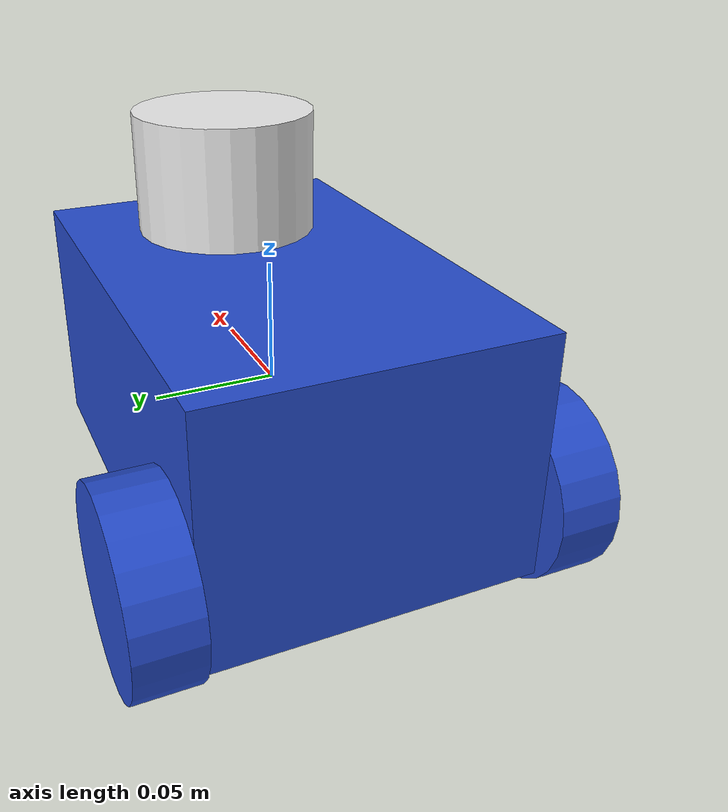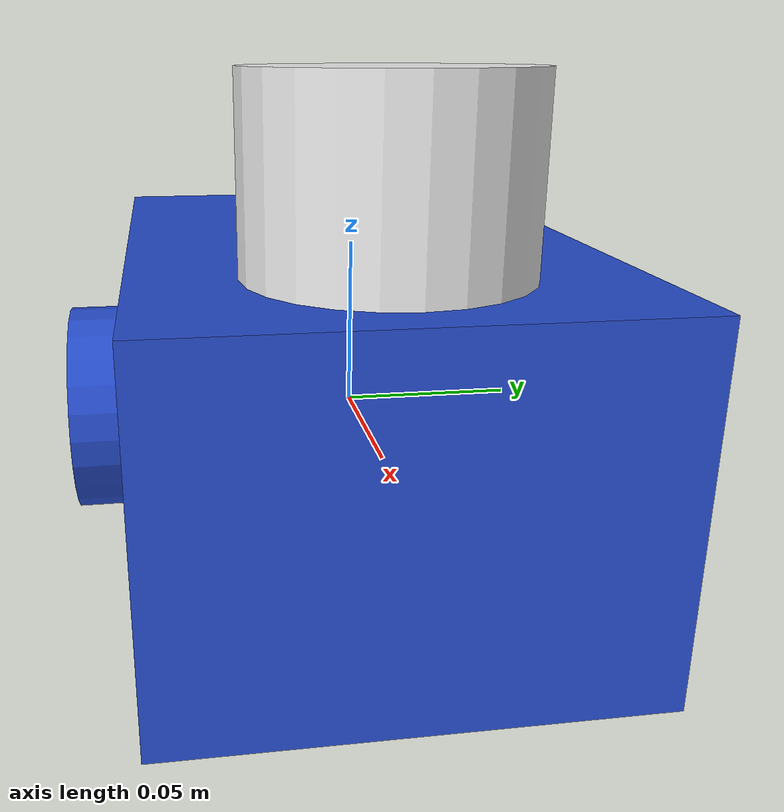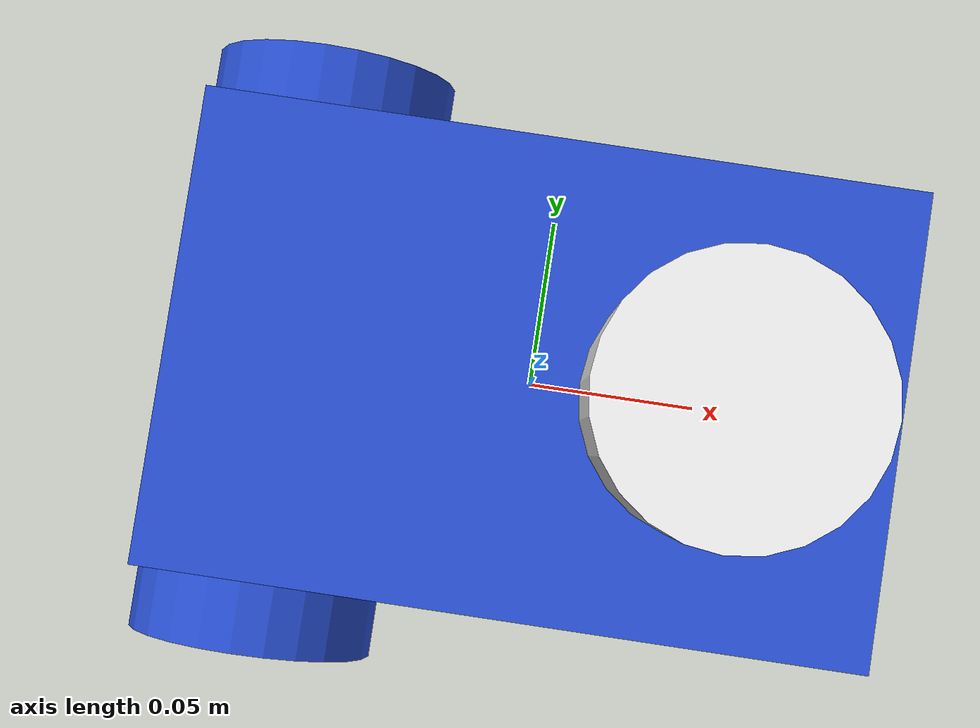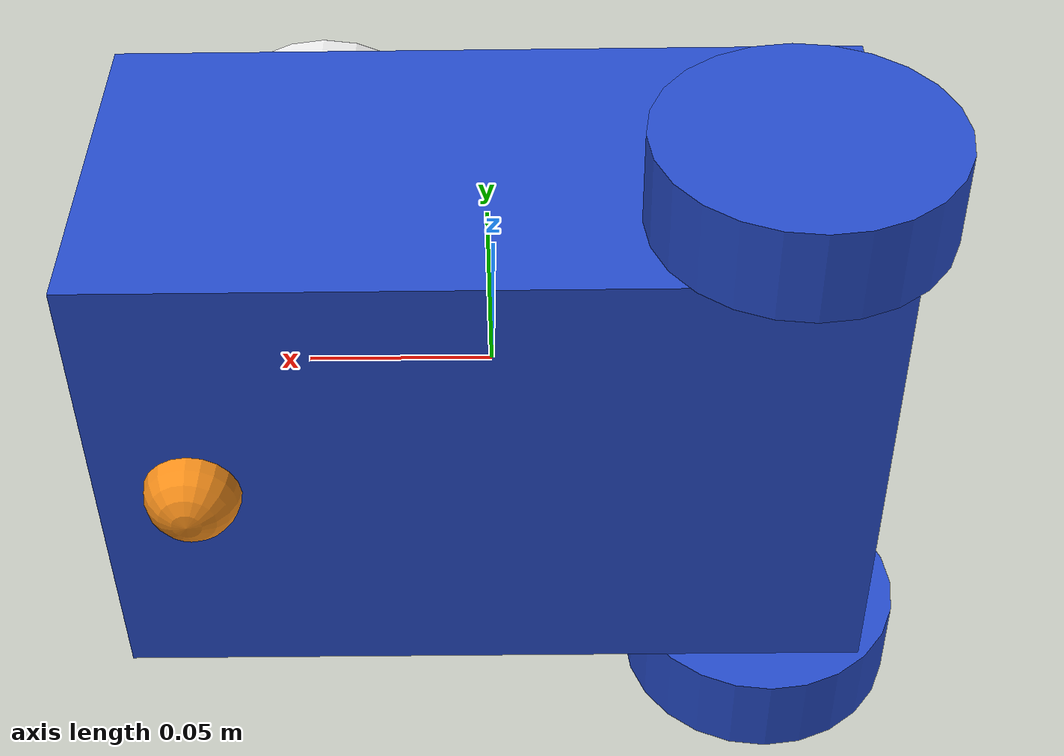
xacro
<?xml version="1.0" ?>
<robot name="gillwald_bot" xmlns:xacro="http://www.ros.org/wiki/xacro">

  <xacro:include filename="$(find gillwald_bot)/urdf/gillwald_bot_small/materials_small.xacro" />
  <xacro:include filename="$(find gillwald_bot)/urdf/gillwald_bot_small/gillwald_bot_small.gazebo" />
  <xacro:include filename="$(find gillwald_bot)/urdf/gillwald_bot_small/macros_small.xacro" />

  <link name="link_chassis">
    <!-- pose and inertial -->
    <pose>0 0 0.1 0 0 0</pose>
    <inertial>
      <mass value="5"/>
      <origin rpy="0 0 0" xyz="0 0 0"/>
      <inertia ixx="0.0395416666667" ixy="0" ixz="0" iyy="0.106208333333" iyz="0" izz="0.106208333333"/>
    </inertial>
    <!-- body -->
    <collision name="collision_chassis">
      <geometry>
        <box size="0.2032 0.13335 0.1016"/>
      </geometry>
    </collision>
    <visual>
      <origin rpy="0 0 0" xyz="0 0 0"/>
      <geometry>
        <box size="0.2032 0.13335 0.1016"/>
      </geometry>
      <material name="blue"/>
    </visual>
    <!-- caster front -->
    <collision name="caster_front_collision">
      <origin rpy=" 0 0 0" xyz="0.0762 0 -0.0508"/>
      <geometry>
        <sphere radius="0.0127"/>
      </geometry>
      <surface>
        <friction>
          <ode>
            <mu>0</mu>
            <mu2>0</mu2>
            <slip1>1.0</slip1>
            <slip2>1.0</slip2>
          </ode>
        </friction>
      </surface>
    </collision>
    <visual name="caster_front_visual">
      <origin rpy=" 0 0 0" xyz="0.0762 0 -0.0508"/>
      <geometry>
        <sphere radius="0.0127"/>
      </geometry>
    </visual>
  </link>

  <link name="sensor_laser">
    <inertial>
      <origin xyz="0 0 0" rpy="0 0 0" />
      <mass value="1" />
      <xacro:cylinder_inertia mass="0.5" r="0.0381" l="0.0508" />
    </inertial>

    <visual>
      <origin xyz="0 0 0" rpy="0 0 0" />
      <geometry>
        <cylinder radius="0.0381" length="0.0508"/>
      </geometry>
      <material name="white" />
    </visual>

    <collision>
      <origin xyz="0 0 0" rpy="0 0 0"/>
      <geometry>
        <cylinder radius="0.0381" length="0.0508"/>
      </geometry>
    </collision>
  </link>

  <joint name="joint_sensor_laser" type="fixed">
    <origin xyz="0.0508 0 0.0762" rpy="0 0 0"/>
    <parent link="link_chassis"/>
    <child link="sensor_laser"/>
  </joint>

  <xacro:link_wheel name="link_right_wheel" />
  <xacro:joint_wheel name="joint_right_wheel" child="link_right_wheel" origin_xyz="-0.0762 0.079375 -0.0254" />

  <xacro:link_wheel name="link_left_wheel" />
  <xacro:joint_wheel name="joint_left_wheel" child="link_left_wheel" origin_xyz="-0.0762 -0.079375 -0.0254" />
</robot>

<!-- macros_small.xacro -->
<robot xmlns:xacro="http://www.ros.org/wiki/xacro">
    <xacro:macro name="link_wheel" params="name">
        <link name="${name}">
            <inertial>
              <mass value="0.2"/>
              <origin rpy="0 1.5707 1.5707" xyz="0 0 0"/>
              <inertia ixx="0.000526666666667" ixy="0" ixz="0" iyy="0.000526666666667" iyz="0" izz="0.001"/>
            </inertial>
            <collision name="link_right_wheel_collision">
              <origin rpy="0 1.5707 1.5707" xyz="0 0 0"/>
              <geometry>
                <cylinder length="0.0254" radius="0.0381"/>
              </geometry>
            </collision>
            <visual name="${name}_visual">
              <origin rpy="0 1.5707 1.5707" xyz="0 0 0"/>
              <geometry>
                <cylinder length="0.0254" radius="0.0381"/>
              </geometry>
            </visual>
        </link>
    </xacro:macro>

    <xacro:macro name="joint_wheel" params="name child origin_xyz">
      <joint name="${name}" type="continuous">
        <origin rpy="0 0 0" xyz="${origin_xyz}"/>
        <child link="${child}"/>
        <parent link="link_chassis"/>
        <axis rpy="0 0 0" xyz="0 1 0"/>
        <limit effort="10000" velocity="1000"/>
        <joint_properties damping="1.0" friction="1.0"/>
      </joint>
    </xacro:macro>

    <xacro:macro name="cylinder_inertia" params="mass r l">
      <inertia  ixx="${mass*(3*r*r+l*l)/12}" ixy = "0" ixz = "0"
                iyy="${mass*(3*r*r+l*l)/12}" iyz = "0"
                izz="${mass*(r*r)/2}" />
    </xacro:macro>
</robot>
